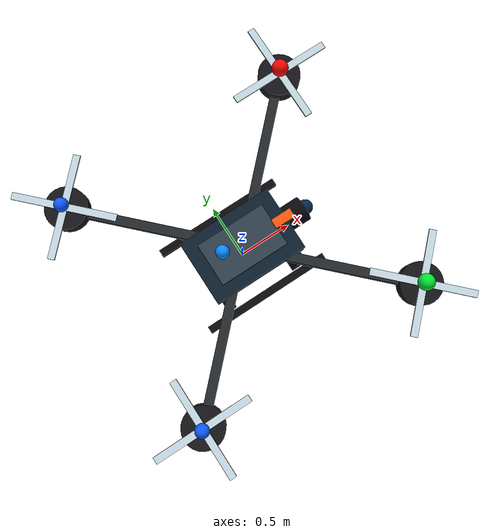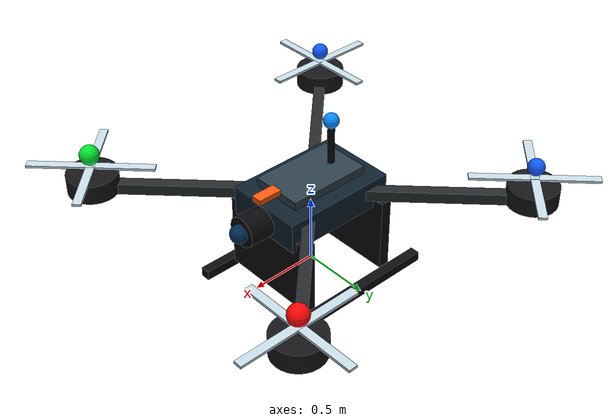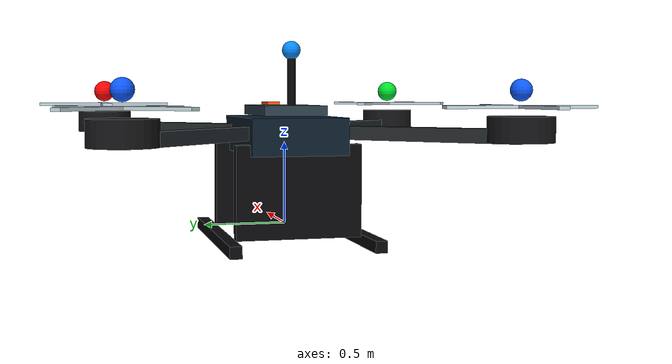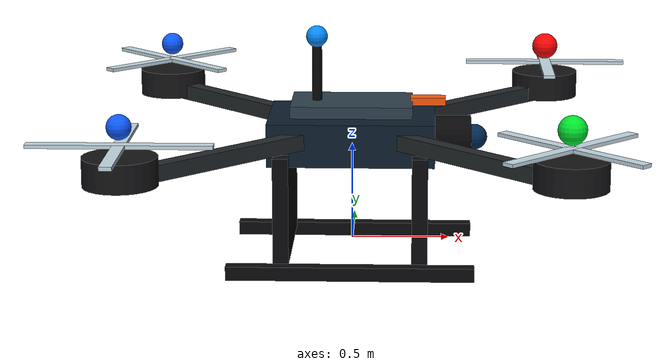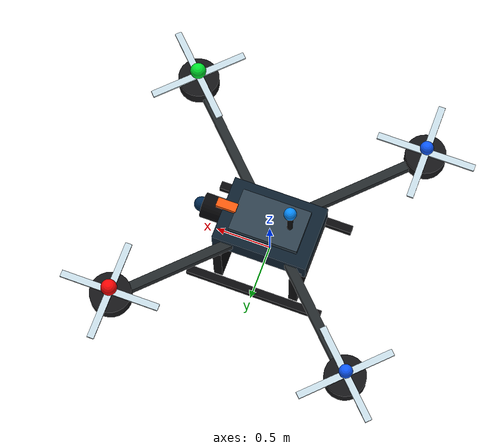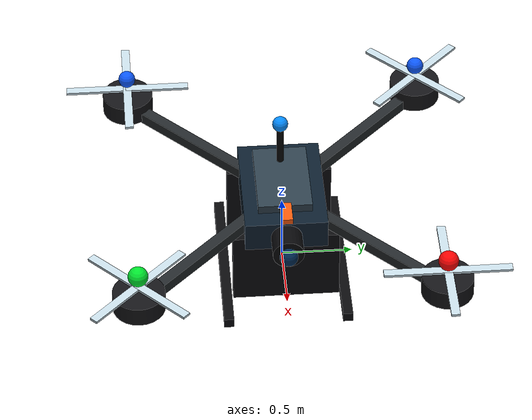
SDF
<?xml version="1.0"?>
<sdf version="1.6">
  <model name="safety_uav">
    <pose>0 0 0.55 0 0 0</pose>
    <static>false</static>
    <link name="base_link">
      <gravity>false</gravity>
      <inertial>
        <mass>1.5</mass>
        <inertia>
          <ixx>0.05</ixx>
          <iyy>0.05</iyy>
          <izz>0.08</izz>
          <ixy>0.0</ixy>
          <ixz>0.0</ixz>
          <iyz>0.0</iyz>
        </inertia>
      </inertial>

      <visual name="central_avionics_body">
        <geometry>
          <box>
            <size>0.85 0.58 0.22</size>
          </box>
        </geometry>
        <material>
          <ambient>0.04 0.08 0.12 1.0</ambient>
          <diffuse>0.05 0.12 0.18 1.0</diffuse>
          <specular>0.25 0.32 0.36 1.0</specular>
        </material>
      </visual>

      <visual name="upper_sensor_plate">
        <pose>0 0 0.15 0 0 0</pose>
        <geometry>
          <box>
            <size>0.62 0.38 0.06</size>
          </box>
        </geometry>
        <material>
          <ambient>0.12 0.18 0.22 1.0</ambient>
          <diffuse>0.18 0.25 0.30 1.0</diffuse>
          <specular>0.35 0.40 0.42 1.0</specular>
        </material>
      </visual>

      <visual name="front_payload_camera">
        <pose>0.50 0 -0.01 0 1.5708 0</pose>
        <geometry>
          <cylinder>
            <radius>0.11</radius>
            <length>0.22</length>
          </cylinder>
        </geometry>
        <material>
          <ambient>0.02 0.02 0.025 1.0</ambient>
          <diffuse>0.03 0.03 0.04 1.0</diffuse>
          <specular>0.5 0.5 0.5 1.0</specular>
        </material>
      </visual>

      <visual name="camera_lens">
        <pose>0.63 0 -0.01 0 0 0</pose>
        <geometry>
          <sphere>
            <radius>0.065</radius>
          </sphere>
        </geometry>
        <material>
          <ambient>0.0 0.08 0.16 1.0</ambient>
          <diffuse>0.0 0.16 0.32 1.0</diffuse>
          <specular>0.8 0.9 1.0 1.0</specular>
        </material>
      </visual>

      <visual name="front_direction_marker">
        <pose>0.39 0 0.18 0 0 0</pose>
        <geometry>
          <box>
            <size>0.18 0.08 0.04</size>
          </box>
        </geometry>
        <material>
          <ambient>1.0 0.35 0.05 1.0</ambient>
          <diffuse>1.0 0.35 0.05 1.0</diffuse>
          <emissive>0.7 0.18 0.02 1.0</emissive>
        </material>
      </visual>

      <visual name="antenna_mast">
        <pose>-0.18 0 0.33 0 0 0</pose>
        <geometry>
          <cylinder>
            <radius>0.025</radius>
            <length>0.32</length>
          </cylinder>
        </geometry>
        <material>
          <ambient>0.02 0.02 0.02 1.0</ambient>
          <diffuse>0.03 0.03 0.03 1.0</diffuse>
        </material>
      </visual>

      <visual name="antenna_tip">
        <pose>-0.18 0 0.51 0 0 0</pose>
        <geometry>
          <sphere>
            <radius>0.055</radius>
          </sphere>
        </geometry>
        <material>
          <ambient>0.02 0.55 1.0 1.0</ambient>
          <diffuse>0.02 0.55 1.0 1.0</diffuse>
          <emissive>0.01 0.25 0.45 1.0</emissive>
        </material>
      </visual>

      <visual name="front_left_rear_right_arm">
        <pose>0 0 0.02 0 0 0.7854</pose>
        <geometry>
          <box>
            <size>3.0 0.08 0.08</size>
          </box>
        </geometry>
        <material>
          <ambient>0.10 0.12 0.13 1.0</ambient>
          <diffuse>0.14 0.16 0.17 1.0</diffuse>
        </material>
      </visual>

      <visual name="front_right_rear_left_arm">
        <pose>0 0 0.02 0 0 -0.7854</pose>
        <geometry>
          <box>
            <size>3.0 0.08 0.08</size>
          </box>
        </geometry>
        <material>
          <ambient>0.10 0.12 0.13 1.0</ambient>
          <diffuse>0.14 0.16 0.17 1.0</diffuse>
        </material>
      </visual>

      <visual name="front_left_motor">
        <pose>1.05 1.05 0.06 0 0 0</pose>
        <geometry>
          <cylinder>
            <radius>0.18</radius>
            <length>0.14</length>
          </cylinder>
        </geometry>
        <material>
          <ambient>0.04 0.04 0.045 1.0</ambient>
          <diffuse>0.08 0.08 0.09 1.0</diffuse>
          <specular>0.35 0.35 0.35 1.0</specular>
        </material>
      </visual>

      <visual name="front_right_motor">
        <pose>1.05 -1.05 0.06 0 0 0</pose>
        <geometry>
          <cylinder>
            <radius>0.18</radius>
            <length>0.14</length>
          </cylinder>
        </geometry>
        <material>
          <ambient>0.04 0.04 0.045 1.0</ambient>
          <diffuse>0.08 0.08 0.09 1.0</diffuse>
          <specular>0.35 0.35 0.35 1.0</specular>
        </material>
      </visual>

      <visual name="rear_left_motor">
        <pose>-1.05 1.05 0.06 0 0 0</pose>
        <geometry>
          <cylinder>
            <radius>0.18</radius>
            <length>0.14</length>
          </cylinder>
        </geometry>
        <material>
          <ambient>0.04 0.04 0.045 1.0</ambient>
          <diffuse>0.08 0.08 0.09 1.0</diffuse>
          <specular>0.35 0.35 0.35 1.0</specular>
        </material>
      </visual>

      <visual name="rear_right_motor">
        <pose>-1.05 -1.05 0.06 0 0 0</pose>
        <geometry>
          <cylinder>
            <radius>0.18</radius>
            <length>0.14</length>
          </cylinder>
        </geometry>
        <material>
          <ambient>0.04 0.04 0.045 1.0</ambient>
          <diffuse>0.08 0.08 0.09 1.0</diffuse>
          <specular>0.35 0.35 0.35 1.0</specular>
        </material>
      </visual>

      <visual name="front_left_propeller_x">
        <pose>1.05 1.05 0.18 0 0 0</pose>
        <geometry>
          <box>
            <size>0.88 0.06 0.018</size>
          </box>
        </geometry>
        <material>
          <ambient>0.78 0.86 0.90 1.0</ambient>
          <diffuse>0.78 0.86 0.90 1.0</diffuse>
        </material>
      </visual>

      <visual name="front_left_propeller_y">
        <pose>1.05 1.05 0.18 0 0 1.5708</pose>
        <geometry>
          <box>
            <size>0.88 0.06 0.018</size>
          </box>
        </geometry>
        <material>
          <ambient>0.78 0.86 0.90 1.0</ambient>
          <diffuse>0.78 0.86 0.90 1.0</diffuse>
        </material>
      </visual>

      <visual name="front_right_propeller_x">
        <pose>1.05 -1.05 0.18 0 0 0.7854</pose>
        <geometry>
          <box>
            <size>0.88 0.06 0.018</size>
          </box>
        </geometry>
        <material>
          <ambient>0.78 0.86 0.90 1.0</ambient>
          <diffuse>0.78 0.86 0.90 1.0</diffuse>
        </material>
      </visual>

      <visual name="front_right_propeller_y">
        <pose>1.05 -1.05 0.18 0 0 2.3562</pose>
        <geometry>
          <box>
            <size>0.88 0.06 0.018</size>
          </box>
        </geometry>
        <material>
          <ambient>0.78 0.86 0.90 1.0</ambient>
          <diffuse>0.78 0.86 0.90 1.0</diffuse>
        </material>
      </visual>

      <visual name="rear_left_propeller_x">
        <pose>-1.05 1.05 0.18 0 0 0.7854</pose>
        <geometry>
          <box>
            <size>0.88 0.06 0.018</size>
          </box>
        </geometry>
        <material>
          <ambient>0.78 0.86 0.90 1.0</ambient>
          <diffuse>0.78 0.86 0.90 1.0</diffuse>
        </material>
      </visual>

      <visual name="rear_left_propeller_y">
        <pose>-1.05 1.05 0.18 0 0 2.3562</pose>
        <geometry>
          <box>
            <size>0.88 0.06 0.018</size>
          </box>
        </geometry>
        <material>
          <ambient>0.78 0.86 0.90 1.0</ambient>
          <diffuse>0.78 0.86 0.90 1.0</diffuse>
        </material>
      </visual>

      <visual name="rear_right_propeller_x">
        <pose>-1.05 -1.05 0.18 0 0 0</pose>
        <geometry>
          <box>
            <size>0.88 0.06 0.018</size>
          </box>
        </geometry>
        <material>
          <ambient>0.78 0.86 0.90 1.0</ambient>
          <diffuse>0.78 0.86 0.90 1.0</diffuse>
        </material>
      </visual>

      <visual name="rear_right_propeller_y">
        <pose>-1.05 -1.05 0.18 0 0 1.5708</pose>
        <geometry>
          <box>
            <size>0.88 0.06 0.018</size>
          </box>
        </geometry>
        <material>
          <ambient>0.78 0.86 0.90 1.0</ambient>
          <diffuse>0.78 0.86 0.90 1.0</diffuse>
        </material>
      </visual>

      <visual name="left_nav_light">
        <pose>1.05 1.05 0.27 0 0 0</pose>
        <geometry>
          <sphere>
            <radius>0.07</radius>
          </sphere>
        </geometry>
        <material>
          <ambient>1.0 0.02 0.02 1.0</ambient>
          <diffuse>1.0 0.02 0.02 1.0</diffuse>
          <emissive>0.75 0.0 0.0 1.0</emissive>
        </material>
      </visual>

      <visual name="right_nav_light">
        <pose>1.05 -1.05 0.27 0 0 0</pose>
        <geometry>
          <sphere>
            <radius>0.07</radius>
          </sphere>
        </geometry>
        <material>
          <ambient>0.0 0.9 0.18 1.0</ambient>
          <diffuse>0.0 0.9 0.18 1.0</diffuse>
          <emissive>0.0 0.5 0.08 1.0</emissive>
        </material>
      </visual>

      <visual name="rear_beacon_left">
        <pose>-1.05 1.05 0.27 0 0 0</pose>
        <geometry>
          <sphere>
            <radius>0.06</radius>
          </sphere>
        </geometry>
        <material>
          <ambient>0.05 0.35 1.0 1.0</ambient>
          <diffuse>0.05 0.35 1.0 1.0</diffuse>
          <emissive>0.02 0.18 0.5 1.0</emissive>
        </material>
      </visual>

      <visual name="rear_beacon_right">
        <pose>-1.05 -1.05 0.27 0 0 0</pose>
        <geometry>
          <sphere>
            <radius>0.06</radius>
          </sphere>
        </geometry>
        <material>
          <ambient>0.05 0.35 1.0 1.0</ambient>
          <diffuse>0.05 0.35 1.0 1.0</diffuse>
          <emissive>0.02 0.18 0.5 1.0</emissive>
        </material>
      </visual>

      <visual name="front_landing_leg">
        <pose>0.35 0 -0.32 0 0 0</pose>
        <geometry>
          <box>
            <size>0.08 0.75 0.55</size>
          </box>
        </geometry>
        <material>
          <ambient>0.02 0.02 0.025 1.0</ambient>
          <diffuse>0.04 0.04 0.05 1.0</diffuse>
        </material>
      </visual>

      <visual name="rear_landing_leg">
        <pose>-0.35 0 -0.32 0 0 0</pose>
        <geometry>
          <box>
            <size>0.08 0.75 0.55</size>
          </box>
        </geometry>
        <material>
          <ambient>0.02 0.02 0.025 1.0</ambient>
          <diffuse>0.04 0.04 0.05 1.0</diffuse>
        </material>
      </visual>

      <visual name="left_landing_skid">
        <pose>0 0.42 -0.62 0 0 0</pose>
        <geometry>
          <box>
            <size>1.25 0.07 0.07</size>
          </box>
        </geometry>
        <material>
          <ambient>0.02 0.02 0.025 1.0</ambient>
          <diffuse>0.04 0.04 0.05 1.0</diffuse>
        </material>
      </visual>

      <visual name="right_landing_skid">
        <pose>0 -0.42 -0.62 0 0 0</pose>
        <geometry>
          <box>
            <size>1.25 0.07 0.07</size>
          </box>
        </geometry>
        <material>
          <ambient>0.02 0.02 0.025 1.0</ambient>
          <diffuse>0.04 0.04 0.05 1.0</diffuse>
        </material>
      </visual>

      <collision name="uav_collision_envelope">
        <geometry>
          <box>
            <size>2.55 2.55 0.75</size>
          </box>
        </geometry>
      </collision>
    </link>
  </model>
</sdf>
